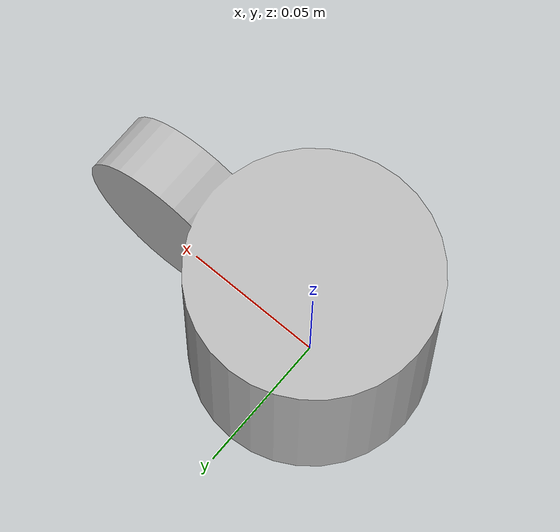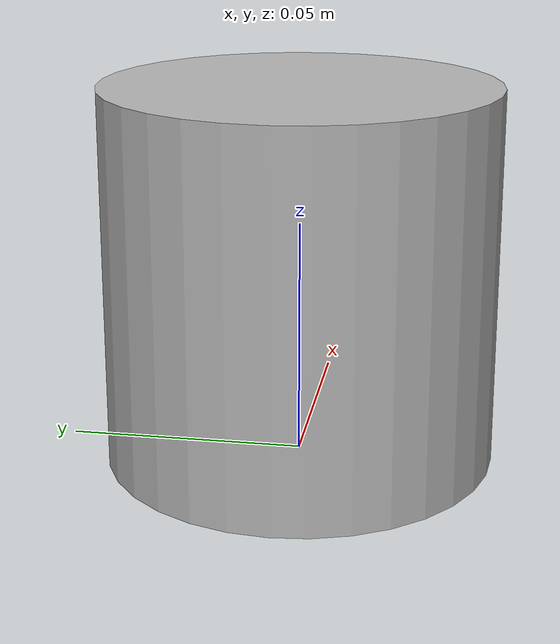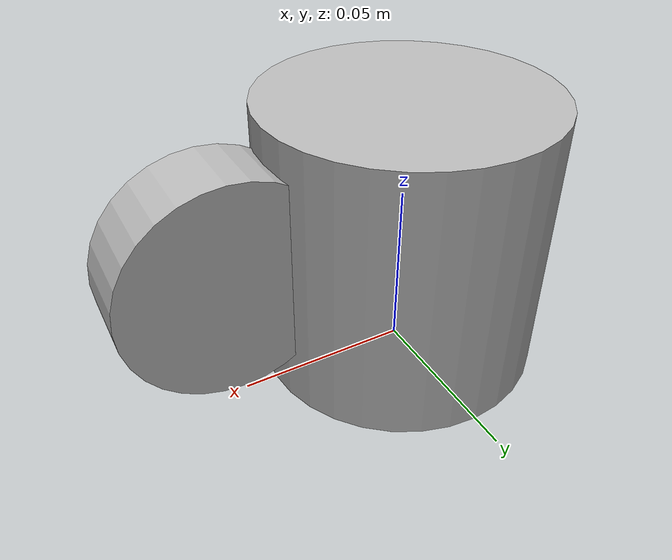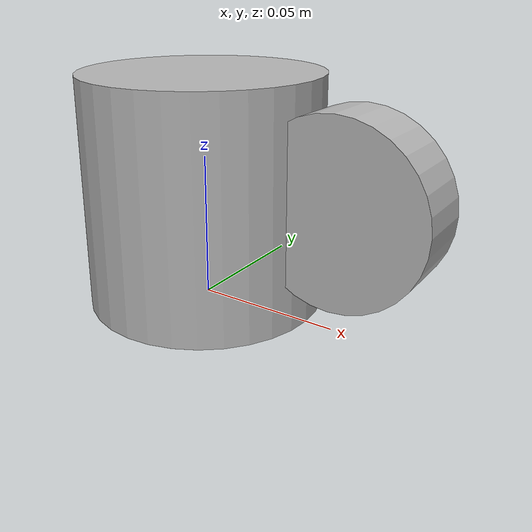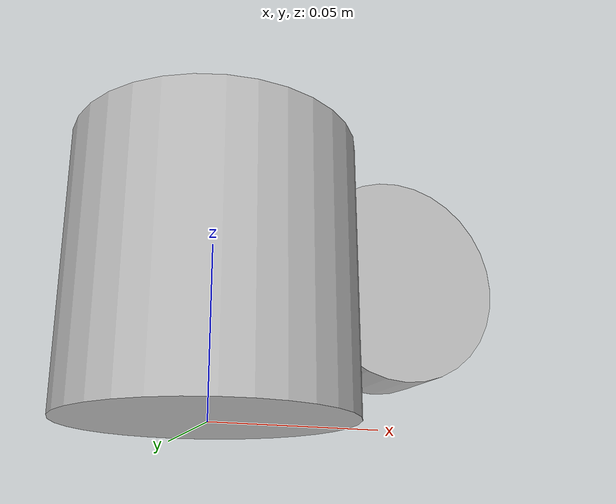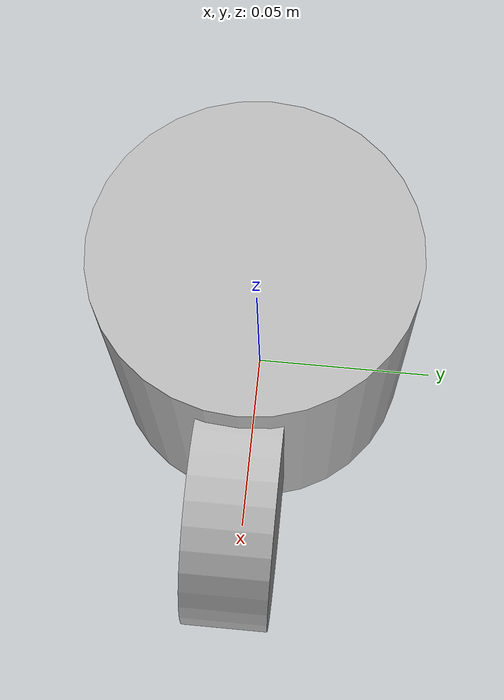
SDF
<?xml version='1.0'?>
<sdf version='1.6'>
  <model name='cup_yellow'>
    <link name='link_12'>

      <inertial>
          <pose frame=''>0 0 0.055 0 -0 0</pose>
        <mass>0.25</mass>
        <inertia>
          <ixx>0.000226874479146</ixx>
          <ixy>0.0</ixy>
          <ixz>0.0</ixz>
          <iyy>0.000226874479146</iyy>
          <iyz>0.0</iyz>
          <izz>0.000209152378125</izz>
        </inertia>
      </inertial>

          <visual name='visual_1'>
        <geometry>
          <mesh>
            <uri>model://cup_yellow/meshes/cup_2.dae</uri>
            <scale>1 1 1</scale>
          </mesh>
        </geometry>

        <cast_shadows>1</cast_shadows>
        <transparency>0</transparency>
      </visual>
      <collision name='collision_1'>
        <laser_retro>0</laser_retro>
        <max_contacts>10</max_contacts>
        <surface>
        <friction>
          <ode>
            <mu>1.0</mu>
            <mu2>1.0</mu2>
          </ode>
        </friction>
      </surface>
        <pose frame=''>0 0 0 0 -0 0</pose>
        <geometry>
          <mesh>
            <uri>model://cup_yellow/meshes/cup_2.stl</uri>
            <scale>1 1 1</scale>
          </mesh>
        </geometry>
       </collision>
    </link>

    <static>0</static>
    <allow_auto_disable>1</allow_auto_disable>
  </model>
</sdf>
